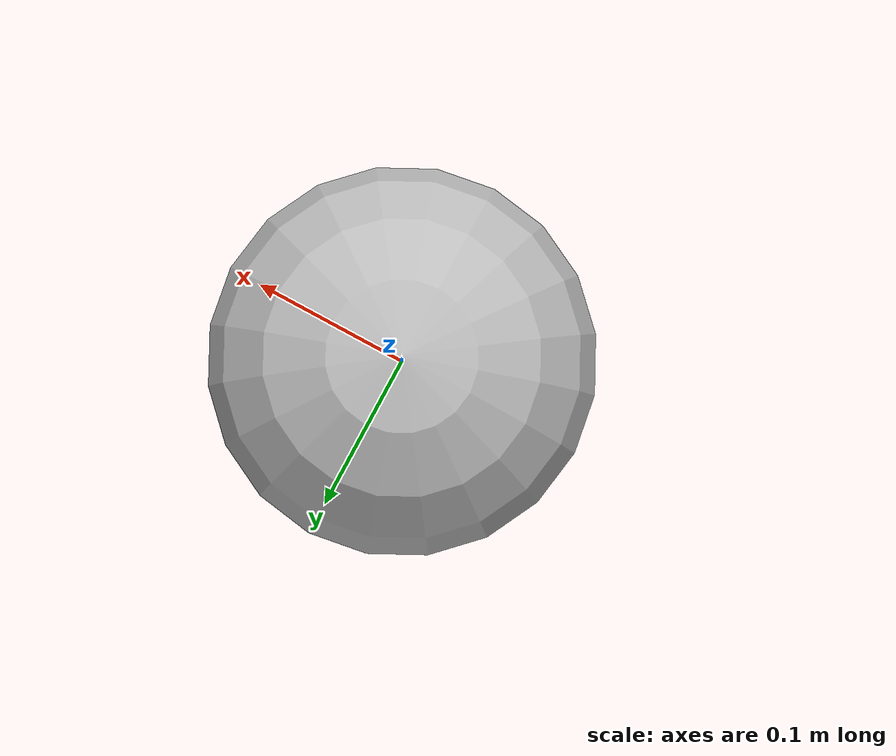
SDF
<?xml version="1.0" ?>
<sdf version="1.8">

    <model name="basketball">
        <link name="link">

            <collision name="collision">
                <geometry>
                    <sphere>
                        <radius>0.117</radius>
                    </sphere>
                </geometry>

                <max_contacts>10</max_contacts>
                <surface>
                    <bounce>
                        <restitution_coefficient>0.74</restitution_coefficient>
                        <threshold>0.01</threshold>
                    </bounce>
                </surface>

            </collision>

            <intertial>
                <mass value="1.1"/>
            </intertial>
            <visual name="visual">
            <geometry>
                <sphere>
                    <radius>0.117</radius>
                </sphere>
            </geometry>
            </visual>
        </link>

        <gazebo>
            <plugin filename="libignition-gazebo6-velocity-control-system.so.6"
                name="ignition::gazebo::systems::VelocityControl">
                <topic>ball_vel</topic>
            </plugin>
        </gazebo>

    </model>
</sdf>
